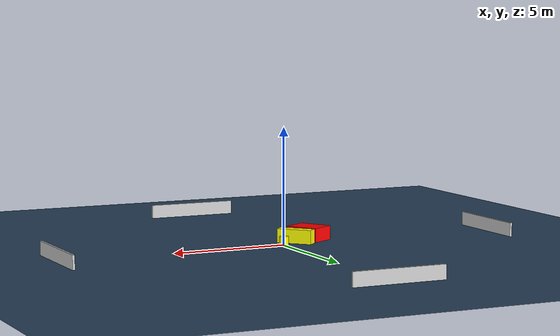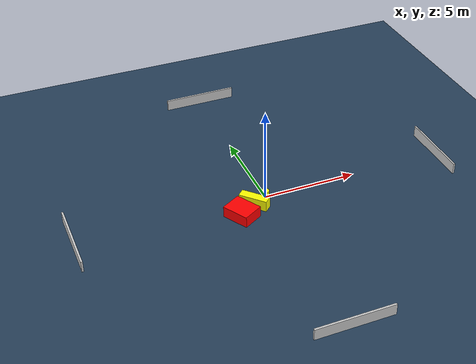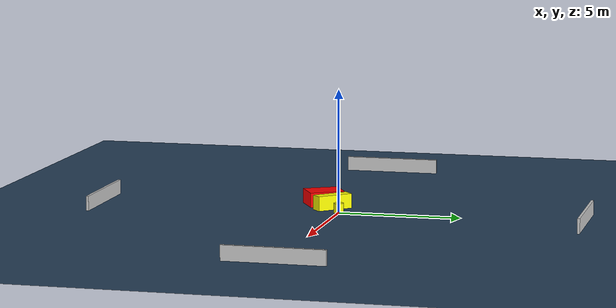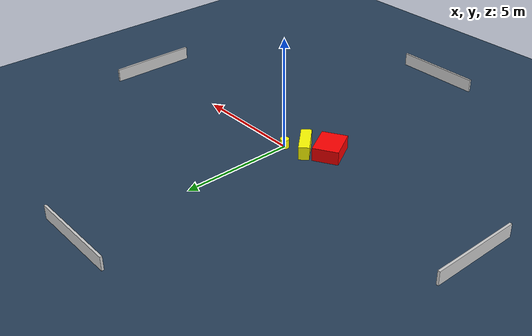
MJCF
<?xml version="1.0" ?>
<mujoco model="generated_environment">
  <option timestep="0.01" integrator="RK4" cone="elliptic"/>
  <default>
    <geom density="1"/>
  </default>
  <asset>
    <texture builtin="gradient" height="3072" name="skybox" rgb1="0.3 0.5 0.7" rgb2="0 0 0" type="skybox" width="512"/>
    <texture builtin="checker" height="300" name="groundplane" rgb1="0.2 0.3 0.4" rgb2="0.1 0.2 0.3" type="2d" width="300"/>
    <material name="groundplane" reflectance="0.2" texrepeat="5 5" texture="groundplane"/>
  </asset>
  <worldbody>
    <light dir="0 0 -1" directional="true" pos="0 0 1.5"/>
    <geom condim="3" friction="0.5 0.005 0.001" material="groundplane" name="floor" pos="0 0 0" size="0 0 0.05" type="plane"/>
    <body name="walls">
      <geom name="wall_1" condim="4" pos="-10.0 0.0 0.3" rgba="0.800000011920929 0.800000011920929 0.800000011920929 1.0" size="0.05 2.0 0.3" type="box"/>
      <geom name="wall_2" condim="4" pos="10.0 0.0 0.3" rgba="0.800000011920929 0.800000011920929 0.800000011920929 1.0" size="0.05 2.0 0.3" type="box"/>
      <geom name="wall_3" condim="4" pos="0.0 -10.0 0.3" rgba="0.800000011920929 0.800000011920929 0.800000011920929 1.0" size="2.0 0.05 0.3" type="box"/>
      <geom name="wall_4" condim="4" pos="0.0 10.0 0.3" rgba="0.800000011920929 0.800000011920929 0.800000011920929 1.0" size="2.0 0.05 0.3" type="box"/>
    </body>
    <body name="robot">
      <joint name="joint_x" type="slide" pos="0 0 0" axis="1 0 0"/>
      <joint name="joint_y" type="slide" pos="0 0 0" axis="0 1 0"/>
      <geom name="robot" type="cylinder" pos="0.0 0.0 0.2" size="0.2 0.2 0.0" mass="5.0" friction="1.0 0.005 0.0001" condim="4" rgba="1.0 1.0 0.0 1.0"/>
    </body>
    <body name="obstacle_1_movable">
      <geom name="obstacle_1_movable" condim="4" pos="-0.7903733279703269 -0.45432626955179545 0.3" euler="0 0 133.27787600104105" friction="0.0 0.005 0.001" rgba="1.0 1.0 0.0 1.0" size="0.7605551394631123 0.23334441361247998 0.3" type="box" mass="0.1"/>
      <joint type="free"/>
    </body>
    <body name="obstacle_2_static">
      <geom name="obstacle_2_static" condim="4" pos="-1.6937471568409148 -1.036980816889655 0.3" euler="0 0 299.75670407135846" friction="0.0 0.005 0.001" rgba="1.0 0.0 0.0 1.0" size="0.7269371154325484 0.5694876965636895 0.3" type="box"/>
    </body>
  </worldbody>
  <actuator>
    <motor name="actuator_x" joint="joint_x" gear="1" ctrlrange="-1 1"/>
    <motor name="actuator_y" joint="joint_y" gear="1" ctrlrange="-1 1"/>
  </actuator>
</mujoco>
